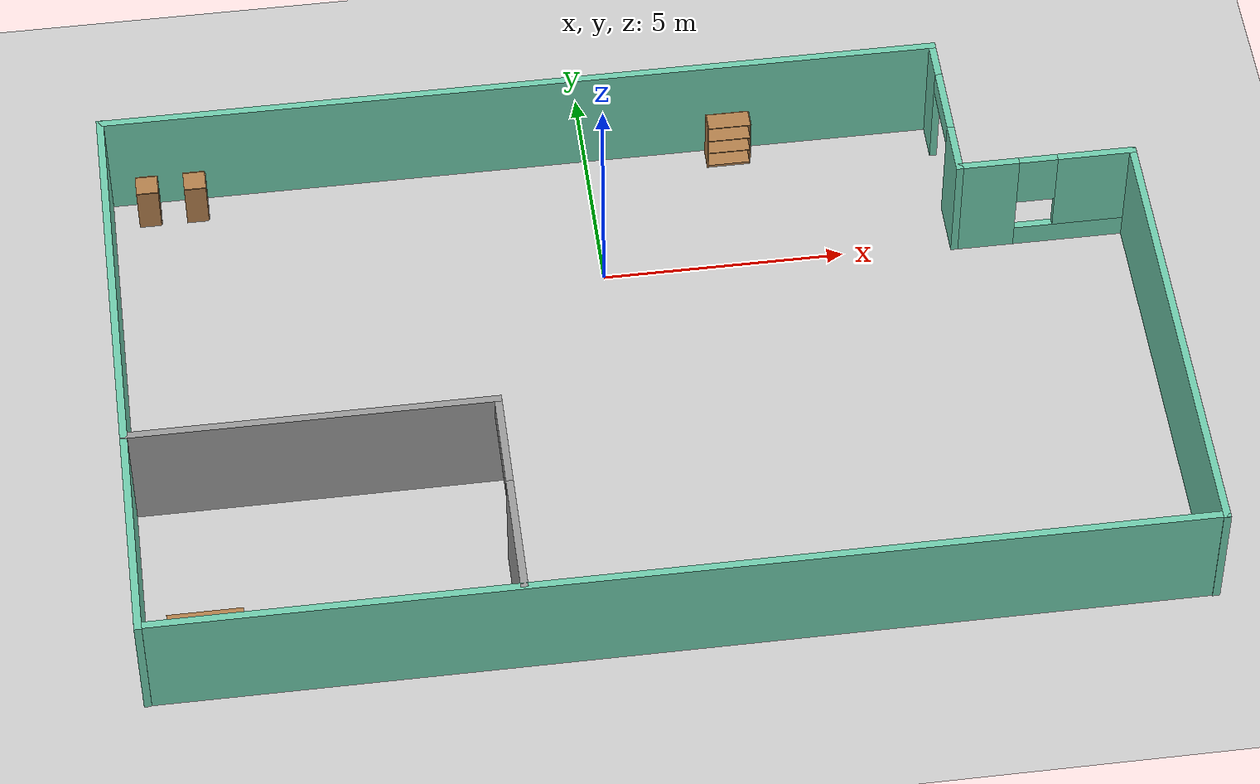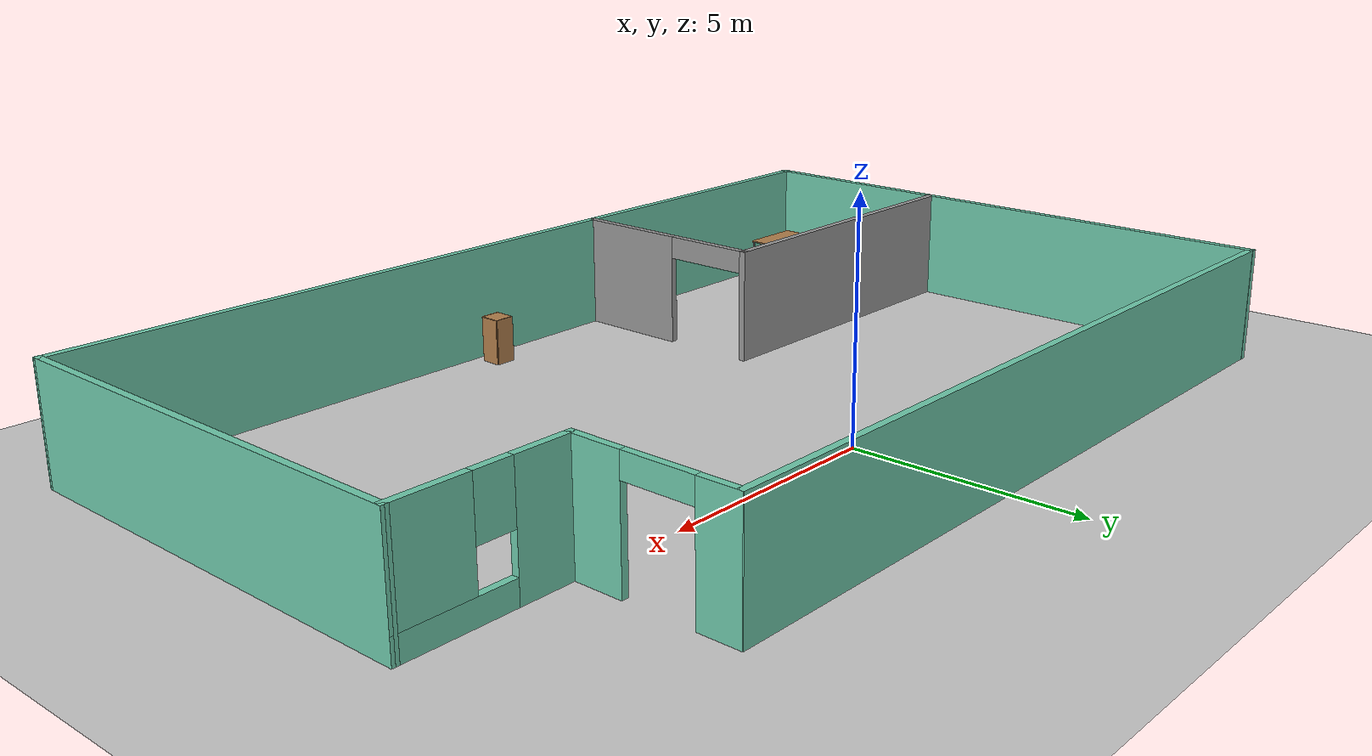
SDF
<sdf version="1.6">
 <world name="default">
  <plugin name="welcome_msg.cpp" filename="libwelcome_msg.so"/>
  <light name="sun" type="directional">
   <pose>0 0 10 0 -0 0</pose>
   <diffuse>0.8 0.8 0.8 1</diffuse>
   <specular>0.2 0.2 0.2 1</specular>
   <attenuation>
    <range>1000</range>
    <constant>0.9</constant>
    <linear>0.01</linear>
    <quadratic>0.001</quadratic>
   </attenuation>
   <direction>-0.5 0.1 -0.9</direction>
  </light>
  <model name="ground_plane">
   <static>1</static>
   <link name="link">
    <collision name="collision">
     <geometry><plane><normal>0 0 1</normal><size>100 100</size></plane></geometry>
     <surface>
      <contact><collide_bitmask>65535</collide_bitmask></contact>
      <friction><ode><mu>100</mu><mu2>50</mu2></ode></friction>
     </surface>
    </collision>
    <visual name="visual">
     <cast_shadows>0</cast_shadows>
     <geometry><plane><normal>0 0 1</normal><size>100 100</size></plane></geometry>
     <material>
      <script><uri>file://media/materials/scripts/gazebo.material</uri><name>Gazebo/Grey</name></script>
     </material>
    </visual>
   </link>
  </model>
  <gravity>0 0 -9.8</gravity>
  <magnetic_field>6e-06 2.3e-05 -4.2e-05</magnetic_field>
  <atmosphere type="adiabatic"/>
  <physics name="default_physics" default="0" type="ode">
   <max_step_size>0.001</max_step_size>
   <real_time_factor>1</real_time_factor>
   <real_time_update_rate>1000</real_time_update_rate>
  </physics>
  <scene><ambient>0.4 0.4 0.4 1</ambient><background>0.7 0.7 0.7 1</background><shadows>1</shadows></scene>
  <spherical_coordinates>
   <surface_model>EARTH_WGS84</surface_model>
   <latitude_deg>0</latitude_deg>
   <longitude_deg>0</longitude_deg>
   <elevation>0</elevation>
   <heading_deg>0</heading_deg>
  </spherical_coordinates>
  <model name="robo_garage">
   <pose>0.42988 -3.14177 0 0 -0 0</pose>
   <link name="Wall_1">
    <collision name="Wall_1_Collision">
     <geometry><box><size>17.5 0.15 2.5</size></box></geometry>
     <pose>0 0 1.25 0 -0 0</pose>
    </collision>
    <visual name="Wall_1_Visual">
     <pose>0 0 1.25 0 -0 0</pose>
     <geometry><box><size>17.5 0.15 2.5</size></box></geometry>
     <material>
      <script><uri>file://media/materials/scripts/gazebo.material</uri><name>Gazebo/Grey</name></script>
      <ambient>0.435294 0.796078 0.67451 1</ambient>
     </material>
     <meta><layer>0</layer></meta>
    </visual>
    <pose>-1.77112 6.49406 0 0 -0 3.14159</pose>
   </link>
   <link name="Wall_12">
    <collision name="Wall_12_Collision">
     <geometry><box><size>7.5 0.15 2.5</size></box></geometry>
     <pose>0 0 1.25 0 -0 0</pose>
    </collision>
    <visual name="Wall_12_Visual">
     <pose>0 0 1.25 0 -0 0</pose>
     <geometry><box><size>7.5 0.15 2.5</size></box></geometry>
     <material>
      <script><uri>file://media/materials/scripts/gazebo.material</uri><name>Gazebo/Grey</name></script>
      <ambient>1 1 1 1</ambient>
     </material>
     <meta><layer>0</layer></meta>
    </visual>
    <pose>-6.81138 -1.83394 0 0 -0 0</pose>
   </link>
   <link name="Wall_13">
    <pose>-3.13638 -4.13394 0 0 0 -1.5708</pose>
    <visual name="Wall_13_Visual_0">
     <pose>-2.30058 0 1.25 0 -0 0</pose>
     <geometry><box><size>0.14883 0.15 2.5</size></box></geometry>
     <material>
      <script><uri>file://media/materials/scripts/gazebo.material</uri><name>Gazebo/Grey</name></script>
      <ambient>1 1 1 1</ambient>
     </material>
     <meta><layer>0</layer></meta>
    </visual>
    <collision name="Wall_13_Collision_0">
     <geometry><box><size>0.14883 0.15 2.5</size></box></geometry>
     <pose>-2.30058 0 1.25 0 -0 0</pose>
    </collision>
    <visual name="Wall_13_Visual_1">
     <pose>1.07441 0 1.25 0 -0 0</pose>
     <geometry><box><size>2.60117 0.15 2.5</size></box></geometry>
     <material>
      <script><uri>file://media/materials/scripts/gazebo.material</uri><name>Gazebo/Grey</name></script>
      <ambient>1 1 1 1</ambient>
     </material>
     <meta><layer>0</layer></meta>
    </visual>
    <collision name="Wall_13_Collision_1">
     <geometry><box><size>2.60117 0.15 2.5</size></box></geometry>
     <pose>1.07441 0 1.25 0 -0 0</pose>
    </collision>
    <visual name="Wall_13_Visual_2">
     <pose>-1.22617 0 2.25 0 -0 0</pose>
     <geometry><box><size>2 0.15 0.5</size></box></geometry>
     <material>
      <script><uri>file://media/materials/scripts/gazebo.material</uri><name>Gazebo/Grey</name></script>
      <ambient>1 1 1 1</ambient>
     </material>
     <meta><layer>0</layer></meta>
    </visual>
    <collision name="Wall_13_Collision_2">
     <geometry><box><size>2 0.15 0.5</size></box></geometry>
     <pose>-1.22617 0 2.25 0 -0 0</pose>
    </collision>
   </link>
   <link name="Wall_3">
    <pose>6.90388 4.76807 0 0 0 -1.5708</pose>
    <visual name="Wall_3_Visual_0">
     <pose>-1.3356 0 1.25 0 -0 0</pose>
     <geometry><box><size>0.88999 0.15 2.5</size></box></geometry>
     <material>
      <script><uri>file://media/materials/scripts/gazebo.material</uri><name>Gazebo/Grey</name></script>
      <ambient>0.435294 0.796078 0.67451 1</ambient>
     </material>
     <meta><layer>0</layer></meta>
    </visual>
    <collision name="Wall_3_Collision_0">
     <geometry><box><size>0.88999 0.15 2.5</size></box></geometry>
     <pose>-1.3356 0 1.25 0 -0 0</pose>
    </collision>
    <visual name="Wall_3_Visual_1">
     <pose>1.195 0 1.25 0 -0 0</pose>
     <geometry><box><size>1.17119 0.15 2.5</size></box></geometry>
     <material>
      <script><uri>file://media/materials/scripts/gazebo.material</uri><name>Gazebo/Grey</name></script>
      <ambient>0.435294 0.796078 0.67451 1</ambient>
     </material>
     <meta><layer>0</layer></meta>
    </visual>
    <collision name="Wall_3_Collision_1">
     <geometry><box><size>1.17119 0.15 2.5</size></box></geometry>
     <pose>1.195 0 1.25 0 -0 0</pose>
    </collision>
    <visual name="Wall_3_Visual_2">
     <pose>-0.1406 0 2.25 0 -0 0</pose>
     <geometry><box><size>1.5 0.15 0.5</size></box></geometry>
     <material>
      <script><uri>file://media/materials/scripts/gazebo.material</uri><name>Gazebo/Grey</name></script>
      <ambient>0.435294 0.796078 0.67451 1</ambient>
     </material>
     <meta><layer>0</layer></meta>
    </visual>
    <collision name="Wall_3_Collision_2">
     <geometry><box><size>1.5 0.15 0.5</size></box></geometry>
     <pose>-0.1406 0 2.25 0 -0 0</pose>
    </collision>
   </link>
   <link name="Wall_4">
    <pose>8.70403 3.06231 0 0 0 -9.9e-05</pose>
    <visual name="Wall_4_Visual_0">
     <pose>-1.21912 0 1.25 0 -0 0</pose>
     <geometry><box><size>1.31176 0.15 2.5</size></box></geometry>
     <material>
      <script><uri>file://media/materials/scripts/gazebo.material</uri><name>Gazebo/Grey</name></script>
      <ambient>0.435294 0.796078 0.67451 1</ambient>
     </material>
     <meta><layer>0</layer></meta>
    </visual>
    <collision name="Wall_4_Collision_0">
     <geometry><box><size>1.31176 0.15 2.5</size></box></geometry>
     <pose>-1.21912 0 1.25 0 -0 0</pose>
    </collision>
    <visual name="Wall_4_Visual_1">
     <pose>0.655882 0 0.25 0 -0 0</pose>
     <geometry><box><size>2.43824 0.15 0.5</size></box></geometry>
     <material>
      <script><uri>file://media/materials/scripts/gazebo.material</uri><name>Gazebo/Grey</name></script>
      <ambient>0.435294 0.796078 0.67451 1</ambient>
     </material>
     <meta><layer>0</layer></meta>
    </visual>
    <collision name="Wall_4_Collision_1">
     <geometry><box><size>2.43824 0.15 0.5</size></box></geometry>
     <pose>0.655882 0 0.25 0 -0 0</pose>
    </collision>
    <visual name="Wall_4_Visual_2">
     <pose>1.05588 0 1.5 0 -0 0</pose>
     <geometry><box><size>1.63824 0.15 2</size></box></geometry>
     <material>
      <script><uri>file://media/materials/scripts/gazebo.material</uri><name>Gazebo/Grey</name></script>
      <ambient>0.435294 0.796078 0.67451 1</ambient>
     </material>
     <meta><layer>0</layer></meta>
    </visual>
    <collision name="Wall_4_Collision_2">
     <geometry><box><size>1.63824 0.15 2</size></box></geometry>
     <pose>1.05588 0 1.5 0 -0 0</pose>
    </collision>
    <visual name="Wall_4_Visual_3">
     <pose>-0.163237 0 1.9 0 -0 0</pose>
     <geometry><box><size>0.8 0.15 1.2</size></box></geometry>
     <material>
      <script><uri>file://media/materials/scripts/gazebo.material</uri><name>Gazebo/Grey</name></script>
      <ambient>0.435294 0.796078 0.67451 1</ambient>
     </material>
     <meta><layer>0</layer></meta>
    </visual>
    <collision name="Wall_4_Collision_3">
     <geometry><box><size>0.8 0.15 1.2</size></box></geometry>
     <pose>-0.163237 0 1.9 0 -0 0</pose>
    </collision>
   </link>
   <link name="Wall_5">
    <collision name="Wall_5_Collision">
     <geometry><box><size>9.71424 0.15 2.5</size></box></geometry>
     <pose>0 0 1.25 0 -0 0</pose>
    </collision>
    <visual name="Wall_5_Visual">
     <pose>0 0 1.25 0 -0 0</pose>
     <geometry><box><size>9.71424 0.15 2.5</size></box></geometry>
     <material>
      <script><uri>file://media/materials/scripts/gazebo.material</uri><name>Gazebo/Grey</name></script>
      <ambient>0.435294 0.796078 0.67451 1</ambient>
     </material>
     <meta><layer>0</layer></meta>
    </visual>
    <pose>10.4965 -1.71998 0 0 0 -1.57241</pose>
   </link>
   <link name="Wall_6">
    <collision name="Wall_6_Collision">
     <geometry><box><size>21.143 0.15 2.5</size></box></geometry>
     <pose>0 0 1.25 0 -0 0</pose>
    </collision>
    <visual name="Wall_6_Visual">
     <pose>0 0 1.25 0 -0 0</pose>
     <geometry><box><size>21.143 0.15 2.5</size></box></geometry>
     <material>
      <script><uri>file://media/materials/scripts/gazebo.material</uri><name>Gazebo/Grey</name></script>
      <ambient>0.435294 0.796078 0.67451 1</ambient>
     </material>
     <meta><layer>0</layer></meta>
    </visual>
    <pose>-0.007726 -6.48668 0 0 -0 3.14159</pose>
   </link>
   <link name="Wall_7">
    <collision name="Wall_7_Collision">
     <geometry><box><size>13.1542 0.15 2.5</size></box></geometry>
     <pose>0 0 1.25 0 -0 0</pose>
    </collision>
    <visual name="Wall_7_Visual">
     <pose>0 0 1.25 0 -0 0</pose>
     <geometry><box><size>13.1542 0.15 2.5</size></box></geometry>
     <material>
      <script><uri>file://media/materials/scripts/gazebo.material</uri><name>Gazebo/Grey</name></script>
      <ambient>0.435294 0.796078 0.67451 1</ambient>
     </material>
     <meta><layer>0</layer></meta>
    </visual>
    <pose>-10.4965 1.6e-05 0 0 -0 1.56961</pose>
   </link>
   <static>1</static>
  </model>
  <model name="table_0">
   <static>1</static>
   <link name="link">
    <collision name="surface">
     <pose>0 0 1 0 -0 0</pose>
     <geometry><box><size>1.5 0.8 0.03</size></box></geometry>
     <surface><friction><ode><mu>0.6</mu><mu2>0.6</mu2></ode></friction></surface>
    </collision>
    <visual name="visual1">
     <pose>0 0 1 0 -0 0</pose>
     <geometry><box><size>1.5 0.8 0.03</size></box></geometry>
     <material>
      <script><uri>file://media/materials/scripts/gazebo.material</uri><name>Gazebo/Wood</name></script>
     </material>
    </visual>
    <collision name="front_left_leg">
     <pose>0.68 0.38 0.5 0 -0 0</pose>
     <geometry><cylinder><radius>0.02</radius><length>1</length></cylinder></geometry>
    </collision>
    <visual name="front_left_leg">
     <pose>0.68 0.38 0.5 0 -0 0</pose>
     <geometry><cylinder><radius>0.02</radius><length>1</length></cylinder></geometry>
     <material>
      <script><uri>file://media/materials/scripts/gazebo.material</uri><name>Gazebo/Grey</name></script>
     </material>
    </visual>
    <collision name="front_right_leg">
     <pose>0.68 -0.38 0.5 0 -0 0</pose>
     <geometry><cylinder><radius>0.02</radius><length>1</length></cylinder></geometry>
    </collision>
    <visual name="front_right_leg">
     <pose>0.68 -0.38 0.5 0 -0 0</pose>
     <geometry><cylinder><radius>0.02</radius><length>1</length></cylinder></geometry>
     <material>
      <script><uri>file://media/materials/scripts/gazebo.material</uri><name>Gazebo/Grey</name></script>
     </material>
    </visual>
    <collision name="back_right_leg">
     <pose>-0.68 -0.38 0.5 0 -0 0</pose>
     <geometry><cylinder><radius>0.02</radius><length>1</length></cylinder></geometry>
    </collision>
    <visual name="back_right_leg">
     <pose>-0.68 -0.38 0.5 0 -0 0</pose>
     <geometry><cylinder><radius>0.02</radius><length>1</length></cylinder></geometry>
     <material>
      <script><uri>file://media/materials/scripts/gazebo.material</uri><name>Gazebo/Grey</name></script>
     </material>
    </visual>
    <collision name="back_left_leg">
     <pose>-0.68 0.38 0.5 0 -0 0</pose>
     <geometry><cylinder><radius>0.02</radius><length>1</length></cylinder></geometry>
    </collision>
    <visual name="back_left_leg">
     <pose>-0.68 0.38 0.5 0 -0 0</pose>
     <geometry><cylinder><radius>0.02</radius><length>1</length></cylinder></geometry>
     <material>
      <script><uri>file://media/materials/scripts/gazebo.material</uri><name>Gazebo/Grey</name></script>
     </material>
    </visual>
   </link>
   <pose>-8.80581 -8.73271 0 0 -0 0</pose>
  </model>
  <model name="cabinet">
   <static>1</static>
   <link name="cabinet_bottom_plate">
    <inertial>
     <pose>0 0 -1 0 -0 0</pose>
     <inertia><ixx>2.05</ixx><ixy>0</ixy><ixz>0</ixz><iyy>2.05</iyy><iyz>0</iyz><izz>2.05</izz></inertia>
     <mass>25</mass>
    </inertial>
    <collision name="cabinet_bottom_plate_geom">
     <pose>0 0 0.01 0 -0 0</pose>
     <geometry><box><size>0.45 0.45 0.02</size></box></geometry>
    </collision>
    <visual name="cabinet_bottom_plate_geom_visual">
     <pose>0 0 0.01 0 -0 0</pose>
     <geometry><box><size>0.45 0.45 0.02</size></box></geometry>
     <material>
      <script><uri>file://media/materials/scripts/gazebo.material</uri><name>Gazebo/Wood</name></script>
     </material>
    </visual>
    <collision name="cabinet_bottom_plate_geom_cabinet_back_plate">
     <pose>0.235 0 0.51 0 -0 0</pose>
     <geometry><box><size>0.02 0.45 1.02</size></box></geometry>
    </collision>
    <visual name="cabinet_bottom_plate_geom_cabinet_back_plate_visual">
     <pose>0.235 0 0.51 0 -0 0</pose>
     <geometry><box><size>0.02 0.45 1.02</size></box></geometry>
     <material>
      <script><uri>file://media/materials/scripts/gazebo.material</uri><name>Gazebo/Wood</name></script>
     </material>
    </visual>
    <collision name="cabinet_bottom_plate_geom_cabinet_left_plate">
     <pose>0 0.235 0.51 0 -0 0</pose>
     <geometry><box><size>0.45 0.02 1.02</size></box></geometry>
    </collision>
    <visual name="cabinet_bottom_plate_geom_cabinet_left_plate_visual">
     <pose>0 0.235 0.51 0 -0 0</pose>
     <geometry><box><size>0.45 0.02 1.02</size></box></geometry>
     <material>
      <script><uri>file://media/materials/scripts/gazebo.material</uri><name>Gazebo/Wood</name></script>
     </material>
    </visual>
    <collision name="cabinet_bottom_plate_geom_cabinet_middle_plate">
     <pose>0 0 0.51 0 -0 0</pose>
     <geometry><box><size>0.45 0.45 0.02</size></box></geometry>
    </collision>
    <visual name="cabinet_bottom_plate_geom_cabinet_middle_plate_visual">
     <pose>0 0 0.51 0 -0 0</pose>
     <geometry><box><size>0.45 0.45 0.02</size></box></geometry>
     <material>
      <script><uri>file://media/materials/scripts/gazebo.material</uri><name>Gazebo/Wood</name></script>
     </material>
    </visual>
    <collision name="cabinet_bottom_plate_geom_cabinet_right_plate">
     <pose>0 -0.235 0.51 0 -0 0</pose>
     <geometry><box><size>0.45 0.02 1.02</size></box></geometry>
    </collision>
    <visual name="cabinet_bottom_plate_geom_cabinet_right_plate_visual">
     <pose>0 -0.235 0.51 0 -0 0</pose>
     <geometry><box><size>0.45 0.02 1.02</size></box></geometry>
     <material>
      <script><uri>file://media/materials/scripts/gazebo.material</uri><name>Gazebo/Wood</name></script>
     </material>
    </visual>
    <collision name="cabinet_bottom_plate_geom_cabinet_top_plate">
     <pose>0 0 1.01 0 -0 0</pose>
     <geometry><box><size>0.45 0.45 0.02</size></box></geometry>
    </collision>
    <visual name="cabinet_bottom_plate_geom_cabinet_top_plate_visual">
     <pose>0 0 1.01 0 -0 0</pose>
     <geometry><box><size>0.45 0.45 0.02</size></box></geometry>
     <material>
      <script><uri>file://media/materials/scripts/gazebo.material</uri><name>Gazebo/Wood</name></script>
     </material>
    </visual>
   </link>
   <pose>-9.24318 2.87101 0 0 -0 0</pose>
  </model>
  <model name="bookshelf">
   <static>1</static>
   <link name="link">
    <inertial><mass>1</mass></inertial>
    <collision name="back">
     <pose>0 0.005 0.6 0 -0 0</pose>
     <geometry><box><size>0.9 0.01 1.2</size></box></geometry>
    </collision>
    <visual name="visual1">
     <pose>0 0.005 0.6 0 -0 0</pose>
     <geometry><box><size>0.9 0.01 1.2</size></box></geometry>
     <material>
      <script><uri>file://media/materials/scripts/gazebo.material</uri><name>Gazebo/Wood</name></script>
     </material>
    </visual>
    <collision name="left_side">
     <pose>0.45 -0.195 0.6 0 -0 0</pose>
     <geometry><box><size>0.02 0.4 1.2</size></box></geometry>
    </collision>
    <visual name="visual2">
     <pose>0.45 -0.195 0.6 0 -0 0</pose>
     <geometry><box><size>0.02 0.4 1.2</size></box></geometry>
     <material>
      <script><uri>file://media/materials/scripts/gazebo.material</uri><name>Gazebo/Wood</name></script>
     </material>
    </visual>
    <collision name="right_side">
     <pose>-0.45 -0.195 0.6 0 -0 0</pose>
     <geometry><box><size>0.02 0.4 1.2</size></box></geometry>
    </collision>
    <visual name="visual3">
     <pose>-0.45 -0.195 0.6 0 -0 0</pose>
     <geometry><box><size>0.02 0.4 1.2</size></box></geometry>
     <material>
      <script><uri>file://media/materials/scripts/gazebo.material</uri><name>Gazebo/Wood</name></script>
     </material>
    </visual>
    <collision name="bottom">
     <pose>0 -0.195 0.03 0 -0 0</pose>
     <geometry><box><size>0.88 0.4 0.06</size></box></geometry>
    </collision>
    <visual name="visual4">
     <pose>0 -0.195 0.03 0 -0 0</pose>
     <geometry><box><size>0.88 0.4 0.06</size></box></geometry>
     <material>
      <script><uri>file://media/materials/scripts/gazebo.material</uri><name>Gazebo/Wood</name></script>
     </material>
    </visual>
    <collision name="top">
     <pose>0 -0.195 1.19 0 -0 0</pose>
     <geometry><box><size>0.88 0.4 0.02</size></box></geometry>
    </collision>
    <visual name="visual5">
     <pose>0 -0.195 1.19 0 -0 0</pose>
     <geometry><box><size>0.88 0.4 0.02</size></box></geometry>
     <material>
      <script><uri>file://media/materials/scripts/gazebo.material</uri><name>Gazebo/Wood</name></script>
     </material>
    </visual>
    <collision name="low_shelf">
     <pose>0 -0.195 0.43 0 -0 0</pose>
     <geometry><box><size>0.88 0.4 0.02</size></box></geometry>
    </collision>
    <visual name="visual6">
     <pose>0 -0.195 0.43 0 -0 0</pose>
     <geometry><box><size>0.88 0.4 0.02</size></box></geometry>
     <material>
      <script><uri>file://media/materials/scripts/gazebo.material</uri><name>Gazebo/Wood</name></script>
     </material>
    </visual>
    <collision name="high_shelf">
     <pose>0 -0.195 0.8 0 -0 0</pose>
     <geometry><box><size>0.88 0.4 0.02</size></box></geometry>
    </collision>
    <visual name="visual7">
     <pose>0 -0.195 0.8 0 -0 0</pose>
     <geometry><box><size>0.88 0.4 0.02</size></box></geometry>
     <material>
      <script><uri>file://media/materials/scripts/gazebo.material</uri><name>Gazebo/Wood</name></script>
     </material>
    </visual>
   </link>
   <pose>2.99909 3.17827 0 0 -0 0</pose>
  </model>
  <model name="cabinet_clone">
   <static>1</static>
   <link name="cabinet_bottom_plate">
    <inertial>
     <pose>0 0 -1 0 -0 0</pose>
     <inertia><ixx>2.05</ixx><ixy>0</ixy><ixz>0</ixz><iyy>2.05</iyy><iyz>0</iyz><izz>2.05</izz></inertia>
     <mass>25</mass>
    </inertial>
    <collision name="cabinet_bottom_plate_geom">
     <pose>0 0 0.01 0 -0 0</pose>
     <geometry><box><size>0.45 0.45 0.02</size></box></geometry>
    </collision>
    <visual name="cabinet_bottom_plate_geom_visual">
     <pose>0 0 0.01 0 -0 0</pose>
     <geometry><box><size>0.45 0.45 0.02</size></box></geometry>
     <material>
      <script><uri>file://media/materials/scripts/gazebo.material</uri><name>Gazebo/Wood</name></script>
     </material>
    </visual>
    <collision name="cabinet_bottom_plate_geom_cabinet_back_plate">
     <pose>0.235 0 0.51 0 -0 0</pose>
     <geometry><box><size>0.02 0.45 1.02</size></box></geometry>
    </collision>
    <visual name="cabinet_bottom_plate_geom_cabinet_back_plate_visual">
     <pose>0.235 0 0.51 0 -0 0</pose>
     <geometry><box><size>0.02 0.45 1.02</size></box></geometry>
     <material>
      <script><uri>file://media/materials/scripts/gazebo.material</uri><name>Gazebo/Wood</name></script>
     </material>
    </visual>
    <collision name="cabinet_bottom_plate_geom_cabinet_left_plate">
     <pose>0 0.235 0.51 0 -0 0</pose>
     <geometry><box><size>0.45 0.02 1.02</size></box></geometry>
    </collision>
    <visual name="cabinet_bottom_plate_geom_cabinet_left_plate_visual">
     <pose>0 0.235 0.51 0 -0 0</pose>
     <geometry><box><size>0.45 0.02 1.02</size></box></geometry>
     <material>
      <script><uri>file://media/materials/scripts/gazebo.material</uri><name>Gazebo/Wood</name></script>
     </material>
    </visual>
    <collision name="cabinet_bottom_plate_geom_cabinet_middle_plate">
     <pose>0 0 0.51 0 -0 0</pose>
     <geometry><box><size>0.45 0.45 0.02</size></box></geometry>
    </collision>
    <visual name="cabinet_bottom_plate_geom_cabinet_middle_plate_visual">
     <pose>0 0 0.51 0 -0 0</pose>
     <geometry><box><size>0.45 0.45 0.02</size></box></geometry>
     <material>
      <script><uri>file://media/materials/scripts/gazebo.material</uri><name>Gazebo/Wood</name></script>
     </material>
    </visual>
    <collision name="cabinet_bottom_plate_geom_cabinet_right_plate">
     <pose>0 -0.235 0.51 0 -0 0</pose>
     <geometry><box><size>0.45 0.02 1.02</size></box></geometry>
    </collision>
    <visual name="cabinet_bottom_plate_geom_cabinet_right_plate_visual">
     <pose>0 -0.235 0.51 0 -0 0</pose>
     <geometry><box><size>0.45 0.02 1.02</size></box></geometry>
     <material>
      <script><uri>file://media/materials/scripts/gazebo.material</uri><name>Gazebo/Wood</name></script>
     </material>
    </visual>
    <collision name="cabinet_bottom_plate_geom_cabinet_top_plate">
     <pose>0 0 1.01 0 -0 0</pose>
     <geometry><box><size>0.45 0.45 0.02</size></box></geometry>
    </collision>
    <visual name="cabinet_bottom_plate_geom_cabinet_top_plate_visual">
     <pose>0 0 1.01 0 -0 0</pose>
     <geometry><box><size>0.45 0.45 0.02</size></box></geometry>
     <material>
      <script><uri>file://media/materials/scripts/gazebo.material</uri><name>Gazebo/Wood</name></script>
     </material>
    </visual>
   </link>
   <pose>-8.24961 2.8741 0 0 -0 0</pose>
  </model>
  <model name="cabinet_clone_0">
   <static>1</static>
   <link name="cabinet_bottom_plate">
    <inertial>
     <pose>0 0 -1 0 -0 0</pose>
     <inertia><ixx>2.05</ixx><ixy>0</ixy><ixz>0</ixz><iyy>2.05</iyy><iyz>0</iyz><izz>2.05</izz></inertia>
     <mass>25</mass>
    </inertial>
    <collision name="cabinet_bottom_plate_geom">
     <pose>0 0 0.01 0 -0 0</pose>
     <geometry><box><size>0.45 0.45 0.02</size></box></geometry>
    </collision>
    <visual name="cabinet_bottom_plate_geom_visual">
     <pose>0 0 0.01 0 -0 0</pose>
     <geometry><box><size>0.45 0.45 0.02</size></box></geometry>
     <material>
      <script><uri>file://media/materials/scripts/gazebo.material</uri><name>Gazebo/Wood</name></script>
     </material>
    </visual>
    <collision name="cabinet_bottom_plate_geom_cabinet_back_plate">
     <pose>0.235 0 0.51 0 -0 0</pose>
     <geometry><box><size>0.02 0.45 1.02</size></box></geometry>
    </collision>
    <visual name="cabinet_bottom_plate_geom_cabinet_back_plate_visual">
     <pose>0.235 0 0.51 0 -0 0</pose>
     <geometry><box><size>0.02 0.45 1.02</size></box></geometry>
     <material>
      <script><uri>file://media/materials/scripts/gazebo.material</uri><name>Gazebo/Wood</name></script>
     </material>
    </visual>
    <collision name="cabinet_bottom_plate_geom_cabinet_left_plate">
     <pose>0 0.235 0.51 0 -0 0</pose>
     <geometry><box><size>0.45 0.02 1.02</size></box></geometry>
    </collision>
    <visual name="cabinet_bottom_plate_geom_cabinet_left_plate_visual">
     <pose>0 0.235 0.51 0 -0 0</pose>
     <geometry><box><size>0.45 0.02 1.02</size></box></geometry>
     <material>
      <script><uri>file://media/materials/scripts/gazebo.material</uri><name>Gazebo/Wood</name></script>
     </material>
    </visual>
    <collision name="cabinet_bottom_plate_geom_cabinet_middle_plate">
     <pose>0 0 0.51 0 -0 0</pose>
     <geometry><box><size>0.45 0.45 0.02</size></box></geometry>
    </collision>
    <visual name="cabinet_bottom_plate_geom_cabinet_middle_plate_visual">
     <pose>0 0 0.51 0 -0 0</pose>
     <geometry><box><size>0.45 0.45 0.02</size></box></geometry>
     <material>
      <script><uri>file://media/materials/scripts/gazebo.material</uri><name>Gazebo/Wood</name></script>
     </material>
    </visual>
    <collision name="cabinet_bottom_plate_geom_cabinet_right_plate">
     <pose>0 -0.235 0.51 0 -0 0</pose>
     <geometry><box><size>0.45 0.02 1.02</size></box></geometry>
    </collision>
    <visual name="cabinet_bottom_plate_geom_cabinet_right_plate_visual">
     <pose>0 -0.235 0.51 0 -0 0</pose>
     <geometry><box><size>0.45 0.02 1.02</size></box></geometry>
     <material>
      <script><uri>file://media/materials/scripts/gazebo.material</uri><name>Gazebo/Wood</name></script>
     </material>
    </visual>
    <collision name="cabinet_bottom_plate_geom_cabinet_top_plate">
     <pose>0 0 1.01 0 -0 0</pose>
     <geometry><box><size>0.45 0.45 0.02</size></box></geometry>
    </collision>
    <visual name="cabinet_bottom_plate_geom_cabinet_top_plate_visual">
     <pose>0 0 1.01 0 -0 0</pose>
     <geometry><box><size>0.45 0.45 0.02</size></box></geometry>
     <material>
      <script><uri>file://media/materials/scripts/gazebo.material</uri><name>Gazebo/Wood</name></script>
     </material>
    </visual>
   </link>
   <pose>0.877098 -9.08841 0 0 -0 0</pose>
  </model>
 </world>
</sdf>
